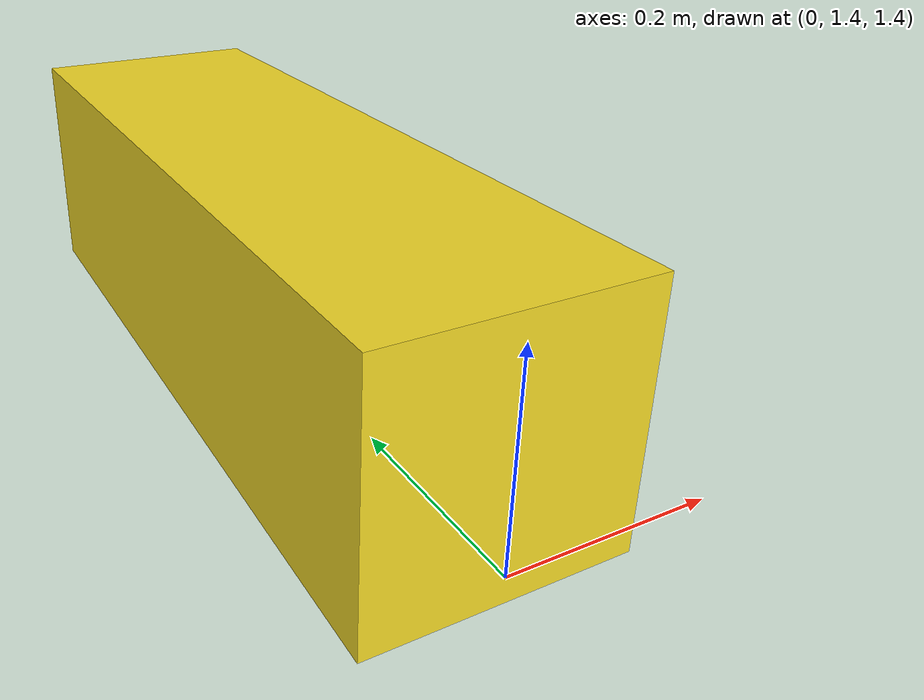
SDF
<?xml version="1.0"?>
<sdf version="1.9">
  <model name="arc_marker_path_planning">
    <static>true</static>
    <pose>0.0 1.8 1.5 0 0 0</pose>
    <link name="marker_link">
      <visual name="marker_visual">
        <geometry>
          <box>
            <size>0.25 0.8 0.25</size>
          </box>
        </geometry>
        <material>
          <ambient>0.95 0.85 0.15 1.0</ambient>
          <diffuse>0.95 0.85 0.15 1.0</diffuse>
        </material>
      </visual>
      <collision name="marker_collision">
        <geometry>
          <box>
            <size>0.25 0.8 0.25</size>
          </box>
        </geometry>
      </collision>
    </link>
  </model>
</sdf>
